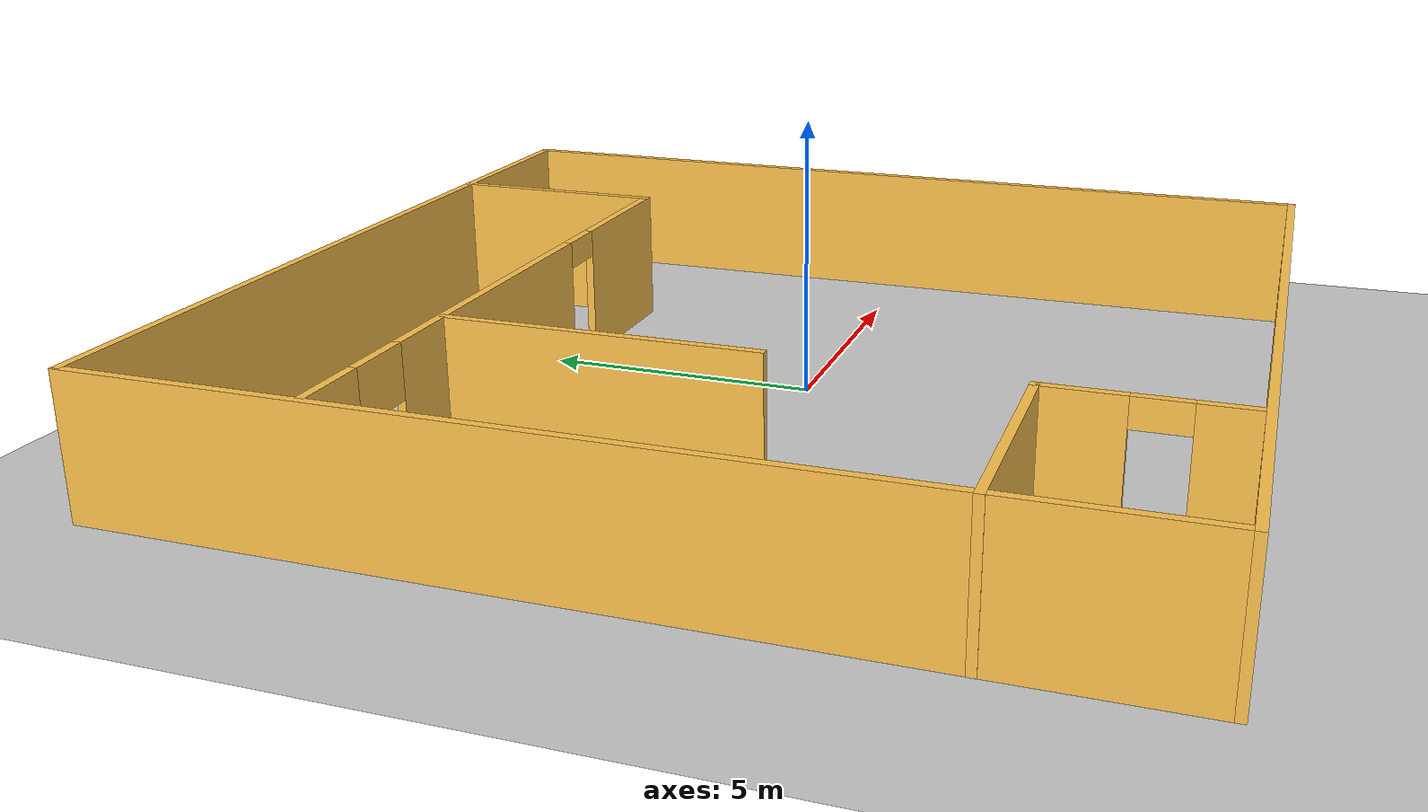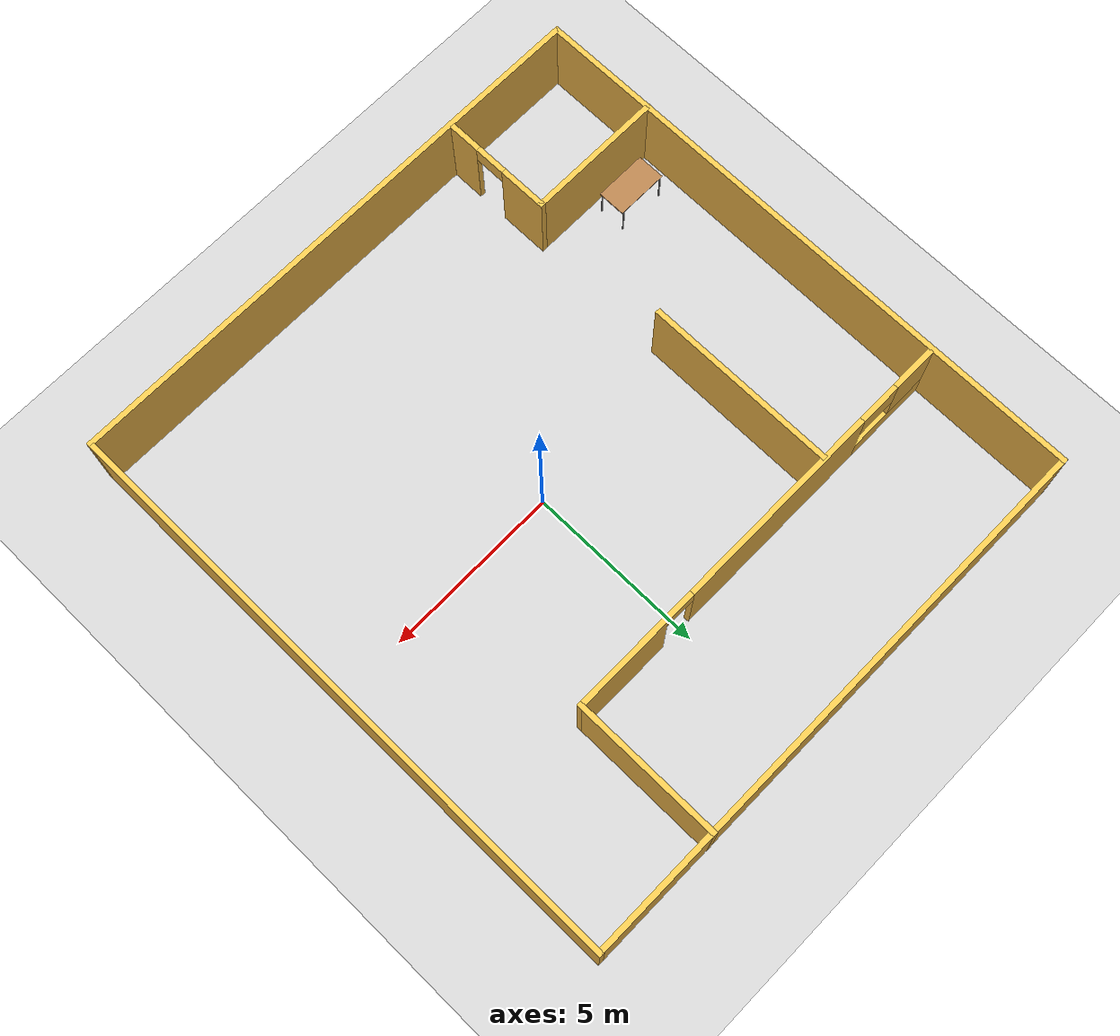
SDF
<sdf version="1.7">
 <world name="default">
  <light name="sun" type="directional">
   <pose>0 0 10 0 -0 0</pose>
   <diffuse>0.8 0.8 0.8 1</diffuse>
   <specular>0.2 0.2 0.2 1</specular>
   <attenuation>
    <range>1000</range>
    <constant>0.9</constant>
    <linear>0.01</linear>
    <quadratic>0.001</quadratic>
   </attenuation>
   <direction>-0.5 0.1 -0.9</direction>
   <spot><inner_angle>0</inner_angle><outer_angle>0</outer_angle><falloff>0</falloff></spot>
  </light>
  <model name="ground_plane">
   <static>1</static>
   <link name="link">
    <collision name="collision">
     <geometry><plane><normal>0 0 1</normal><size>100 100</size></plane></geometry>
     <surface><friction><ode><mu>100</mu><mu2>50</mu2></ode></friction></surface>
    </collision>
    <visual name="visual">
     <cast_shadows>0</cast_shadows>
     <geometry><plane><normal>0 0 1</normal><size>100 100</size></plane></geometry>
     <material>
      <script><uri>file://media/materials/scripts/gazebo.material</uri><name>Gazebo/Grey</name></script>
     </material>
    </visual>
   </link>
  </model>
  <gravity>0 0 -9.8</gravity>
  <magnetic_field>6e-06 2.3e-05 -4.2e-05</magnetic_field>
  <atmosphere type="adiabatic"/>
  <physics type="ode">
   <max_step_size>0.001</max_step_size>
   <real_time_factor>1</real_time_factor>
   <real_time_update_rate>1000</real_time_update_rate>
  </physics>
  <scene><ambient>0.4 0.4 0.4 1</ambient><background>0.7 0.7 0.7 1</background><shadows>1</shadows></scene>
  <spherical_coordinates>
   <surface_model>EARTH_WGS84</surface_model>
   <latitude_deg>0</latitude_deg>
   <longitude_deg>0</longitude_deg>
   <elevation>0</elevation>
   <heading_deg>0</heading_deg>
  </spherical_coordinates>
  <model name="ecuadorian_restaurant">
   <pose>-0.91818 0.262306 0 0 -0 0</pose>
   <link name="Wall_10">
    <collision name="Wall_10_Collision">
     <geometry><box><size>17 0.15 2.5</size></box></geometry>
     <pose>0 0 1.25 0 -0 0</pose>
    </collision>
    <visual name="Wall_10_Visual">
     <pose>0 0 1.25 0 -0 0</pose>
     <geometry><box><size>17 0.15 2.5</size></box></geometry>
     <material>
      <script><uri>file://media/materials/scripts/gazebo.material</uri><name>Gazebo/Grey</name></script>
      <ambient>1 0.764706 0.305882 1</ambient>
     </material>
     <meta><layer>0</layer></meta>
    </visual>
    <pose>7.92837 -0.005736 0 0 -0 -1.5708</pose>
   </link>
   <link name="Wall_12">
    <collision name="Wall_12_Collision">
     <geometry><box><size>4.25 0.15 2.5</size></box></geometry>
     <pose>0 0 1.25 0 -0 0</pose>
    </collision>
    <visual name="Wall_12_Visual">
     <pose>0 0 1.25 0 -0 0</pose>
     <geometry><box><size>4.25 0.15 2.5</size></box></geometry>
     <material>
      <script><uri>file://media/materials/scripts/gazebo.material</uri><name>Gazebo/Grey</name></script>
      <ambient>1 0.764706 0.305882 1</ambient>
     </material>
     <meta><layer>0</layer></meta>
    </visual>
    <pose>4.30286 6.38074 0 0 -0 -1.5708</pose>
   </link>
   <link name="Wall_14">
    <pose>-1.74714 4.33074 0 0 -0 3.14159</pose>
    <visual name="Wall_14_Visual_0">
     <pose>-4.69483 0 1.25 0 -0 0</pose>
     <geometry><box><size>2.86034 0.15 2.5</size></box></geometry>
     <material>
      <script><uri>file://media/materials/scripts/gazebo.material</uri><name>Gazebo/Grey</name></script>
      <ambient>1 0.764706 0.305882 1</ambient>
     </material>
     <meta><layer>0</layer></meta>
    </visual>
    <collision name="Wall_14_Collision_0">
     <geometry><box><size>2.86034 0.15 2.5</size></box></geometry>
     <pose>-4.69483 0 1.25 0 -0 0</pose>
    </collision>
    <visual name="Wall_14_Visual_1">
     <pose>0.620154 0 1.25 0 -0 0</pose>
     <geometry><box><size>5.96964 0.15 2.5</size></box></geometry>
     <material>
      <script><uri>file://media/materials/scripts/gazebo.material</uri><name>Gazebo/Grey</name></script>
      <ambient>1 0.764706 0.305882 1</ambient>
     </material>
     <meta><layer>0</layer></meta>
    </visual>
    <collision name="Wall_14_Collision_1">
     <geometry><box><size>5.96964 0.15 2.5</size></box></geometry>
     <pose>0.620154 0 1.25 0 -0 0</pose>
    </collision>
    <visual name="Wall_14_Visual_2">
     <pose>4.86499 0 0.375 0 -0 0</pose>
     <geometry><box><size>2.52003 0.15 0.75</size></box></geometry>
     <material>
      <script><uri>file://media/materials/scripts/gazebo.material</uri><name>Gazebo/Grey</name></script>
      <ambient>1 0.764706 0.305882 1</ambient>
     </material>
     <meta><layer>0</layer></meta>
    </visual>
    <collision name="Wall_14_Collision_2">
     <geometry><box><size>2.52003 0.15 0.75</size></box></geometry>
     <pose>4.86499 0 0.375 0 -0 0</pose>
    </collision>
    <visual name="Wall_14_Visual_3">
     <pose>5.46499 0 1.625 0 -0 0</pose>
     <geometry><box><size>1.32003 0.15 1.75</size></box></geometry>
     <material>
      <script><uri>file://media/materials/scripts/gazebo.material</uri><name>Gazebo/Grey</name></script>
      <ambient>1 0.764706 0.305882 1</ambient>
     </material>
     <meta><layer>0</layer></meta>
    </visual>
    <collision name="Wall_14_Collision_3">
     <geometry><box><size>1.32003 0.15 1.75</size></box></geometry>
     <pose>5.46499 0 1.625 0 -0 0</pose>
    </collision>
    <visual name="Wall_14_Visual_4">
     <pose>4.20497 0 2.025 0 -0 0</pose>
     <geometry><box><size>1.2 0.15 0.95</size></box></geometry>
     <material>
      <script><uri>file://media/materials/scripts/gazebo.material</uri><name>Gazebo/Grey</name></script>
      <ambient>1 0.764706 0.305882 1</ambient>
     </material>
     <meta><layer>0</layer></meta>
    </visual>
    <collision name="Wall_14_Collision_4">
     <geometry><box><size>1.2 0.15 0.95</size></box></geometry>
     <pose>4.20497 0 2.025 0 -0 0</pose>
    </collision>
    <visual name="Wall_14_Visual_5">
     <pose>-2.81466 0 2.25 0 -0 0</pose>
     <geometry><box><size>0.9 0.15 0.5</size></box></geometry>
     <material>
      <script><uri>file://media/materials/scripts/gazebo.material</uri><name>Gazebo/Grey</name></script>
      <ambient>1 0.764706 0.305882 1</ambient>
     </material>
     <meta><layer>0</layer></meta>
    </visual>
    <collision name="Wall_14_Collision_5">
     <geometry><box><size>0.9 0.15 0.5</size></box></geometry>
     <pose>-2.81466 0 2.25 0 -0 0</pose>
    </collision>
   </link>
   <link name="Wall_16">
    <collision name="Wall_16_Collision">
     <geometry><box><size>5.5 0.15 2.5</size></box></geometry>
     <pose>0 0 1.25 0 -0 0</pose>
    </collision>
    <visual name="Wall_16_Visual">
     <pose>0 0 1.25 0 -0 0</pose>
     <geometry><box><size>5.5 0.15 2.5</size></box></geometry>
     <material>
      <script><uri>file://media/materials/scripts/gazebo.material</uri><name>Gazebo/Grey</name></script>
      <ambient>1 0.764706 0.305882 1</ambient>
     </material>
     <meta><layer>0</layer></meta>
    </visual>
    <pose>-3.99932 1.60464 0 0 -0 -1.5708</pose>
   </link>
   <link name="Wall_2">
    <collision name="Wall_2_Collision">
     <geometry><box><size>16 0.15 2.5</size></box></geometry>
     <pose>0 0 1.25 0 -0 0</pose>
    </collision>
    <visual name="Wall_2_Visual">
     <pose>0 0 1.25 0 -0 0</pose>
     <geometry><box><size>16 0.15 2.5</size></box></geometry>
     <material>
      <script><uri>file://media/materials/scripts/gazebo.material</uri><name>Gazebo/Grey</name></script>
      <ambient>1 0.764706 0.305882 1</ambient>
     </material>
     <meta><layer>0</layer></meta>
    </visual>
    <pose>0.003371 -8.43074 0 0 -0 0</pose>
   </link>
   <link name="Wall_23">
    <collision name="Wall_23_Collision">
     <geometry><box><size>4 0.15 2.5</size></box></geometry>
     <pose>0 0 1.25 0 -0 0</pose>
    </collision>
    <visual name="Wall_23_Visual">
     <pose>0 0 1.25 0 -0 0</pose>
     <geometry><box><size>4 0.15 2.5</size></box></geometry>
     <material>
      <script><uri>file://media/materials/scripts/gazebo.material</uri><name>Gazebo/Grey</name></script>
      <ambient>1 0.764706 0.305882 1</ambient>
     </material>
     <meta><layer>0</layer></meta>
    </visual>
    <pose>-6.00337 -5.20526 0 0 -0 0</pose>
   </link>
   <link name="Wall_24">
    <pose>-4.07837 -6.75526 0 0 -0 -1.5708</pose>
    <visual name="Wall_24_Visual_0">
     <pose>-0.923548 0 1.25 0 -0 0</pose>
     <geometry><box><size>1.40291 0.15 2.5</size></box></geometry>
     <material>
      <script><uri>file://media/materials/scripts/gazebo.material</uri><name>Gazebo/Grey</name></script>
      <ambient>1 0.764706 0.305882 1</ambient>
     </material>
     <meta><layer>0</layer></meta>
    </visual>
    <collision name="Wall_24_Collision_0">
     <geometry><box><size>1.40291 0.15 2.5</size></box></geometry>
     <pose>-0.923548 0 1.25 0 -0 0</pose>
    </collision>
    <visual name="Wall_24_Visual_1">
     <pose>1.15145 0 1.25 0 -0 0</pose>
     <geometry><box><size>0.947095 0.15 2.5</size></box></geometry>
     <material>
      <script><uri>file://media/materials/scripts/gazebo.material</uri><name>Gazebo/Grey</name></script>
      <ambient>1 0.764706 0.305882 1</ambient>
     </material>
     <meta><layer>0</layer></meta>
    </visual>
    <collision name="Wall_24_Collision_1">
     <geometry><box><size>0.947095 0.15 2.5</size></box></geometry>
     <pose>1.15145 0 1.25 0 -0 0</pose>
    </collision>
    <visual name="Wall_24_Visual_2">
     <pose>0.227905 0 2.25 0 -0 0</pose>
     <geometry><box><size>0.9 0.15 0.5</size></box></geometry>
     <material>
      <script><uri>file://media/materials/scripts/gazebo.material</uri><name>Gazebo/Grey</name></script>
      <ambient>1 0.764706 0.305882 1</ambient>
     </material>
     <meta><layer>0</layer></meta>
    </visual>
    <collision name="Wall_24_Collision_2">
     <geometry><box><size>0.9 0.15 0.5</size></box></geometry>
     <pose>0.227905 0 2.25 0 -0 0</pose>
    </collision>
   </link>
   <link name="Wall_6">
    <collision name="Wall_6_Collision">
     <geometry><box><size>17 0.15 2.5</size></box></geometry>
     <pose>0 0 1.25 0 -0 0</pose>
    </collision>
    <visual name="Wall_6_Visual">
     <pose>0 0 1.25 0 -0 0</pose>
     <geometry><box><size>17 0.15 2.5</size></box></geometry>
     <material>
      <script><uri>file://media/materials/scripts/gazebo.material</uri><name>Gazebo/Grey</name></script>
      <ambient>1 0.764706 0.305882 1</ambient>
     </material>
     <meta><layer>0</layer></meta>
    </visual>
    <pose>-7.92163 -0.005736 0 0 -0 1.5708</pose>
   </link>
   <link name="Wall_8">
    <collision name="Wall_8_Collision">
     <geometry><box><size>16 0.15 2.5</size></box></geometry>
     <pose>0 0 1.25 0 -0 0</pose>
    </collision>
    <visual name="Wall_8_Visual">
     <pose>0 0 1.25 0 -0 0</pose>
     <geometry><box><size>16 0.15 2.5</size></box></geometry>
     <material>
      <script><uri>file://media/materials/scripts/gazebo.material</uri><name>Gazebo/Grey</name></script>
      <ambient>1 0.764706 0.305882 1</ambient>
     </material>
     <meta><layer>0</layer></meta>
    </visual>
    <pose>0.003371 8.41926 0 0 -0 0</pose>
   </link>
   <static>1</static>
  </model>
  <model name="table">
   <static>1</static>
   <link name="link">
    <collision name="surface">
     <pose>0 0 1 0 -0 0</pose>
     <geometry><box><size>1.5 0.8 0.03</size></box></geometry>
     <surface><friction><ode><mu>0.6</mu><mu2>0.6</mu2></ode></friction></surface>
    </collision>
    <visual name="visual1">
     <pose>0 0 1 0 -0 0</pose>
     <geometry><box><size>1.5 0.8 0.03</size></box></geometry>
     <material>
      <script><uri>file://media/materials/scripts/gazebo.material</uri><name>Gazebo/Wood</name></script>
     </material>
    </visual>
    <collision name="front_left_leg">
     <pose>0.68 0.38 0.5 0 -0 0</pose>
     <geometry><cylinder><radius>0.02</radius><length>1</length></cylinder></geometry>
    </collision>
    <visual name="front_left_leg">
     <pose>0.68 0.38 0.5 0 -0 0</pose>
     <geometry><cylinder><radius>0.02</radius><length>1</length></cylinder></geometry>
     <material>
      <script><uri>file://media/materials/scripts/gazebo.material</uri><name>Gazebo/Grey</name></script>
     </material>
    </visual>
    <collision name="front_right_leg">
     <pose>0.68 -0.38 0.5 0 -0 0</pose>
     <geometry><cylinder><radius>0.02</radius><length>1</length></cylinder></geometry>
    </collision>
    <visual name="front_right_leg">
     <pose>0.68 -0.38 0.5 0 -0 0</pose>
     <geometry><cylinder><radius>0.02</radius><length>1</length></cylinder></geometry>
     <material>
      <script><uri>file://media/materials/scripts/gazebo.material</uri><name>Gazebo/Grey</name></script>
     </material>
    </visual>
    <collision name="back_right_leg">
     <pose>-0.68 -0.38 0.5 0 -0 0</pose>
     <geometry><cylinder><radius>0.02</radius><length>1</length></cylinder></geometry>
    </collision>
    <visual name="back_right_leg">
     <pose>-0.68 -0.38 0.5 0 -0 0</pose>
     <geometry><cylinder><radius>0.02</radius><length>1</length></cylinder></geometry>
     <material>
      <script><uri>file://media/materials/scripts/gazebo.material</uri><name>Gazebo/Grey</name></script>
     </material>
    </visual>
    <collision name="back_left_leg">
     <pose>-0.68 0.38 0.5 0 -0 0</pose>
     <geometry><cylinder><radius>0.02</radius><length>1</length></cylinder></geometry>
    </collision>
    <visual name="back_left_leg">
     <pose>-0.68 0.38 0.5 0 -0 0</pose>
     <geometry><cylinder><radius>0.02</radius><length>1</length></cylinder></geometry>
     <material>
      <script><uri>file://media/materials/scripts/gazebo.material</uri><name>Gazebo/Grey</name></script>
     </material>
    </visual>
   </link>
   <pose>-7.52963 -4.20258 0 0 -0 0</pose>
  </model>
  <plugin name="ActorPosesPlugin" filename="libActorPosesPlugin.so"/>
 </world>
</sdf>
